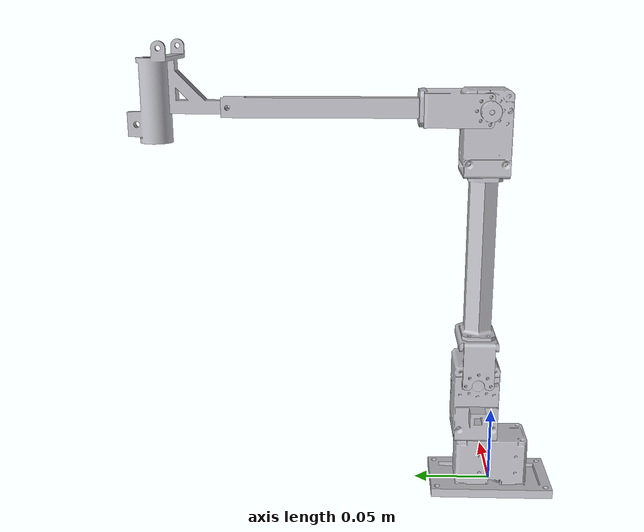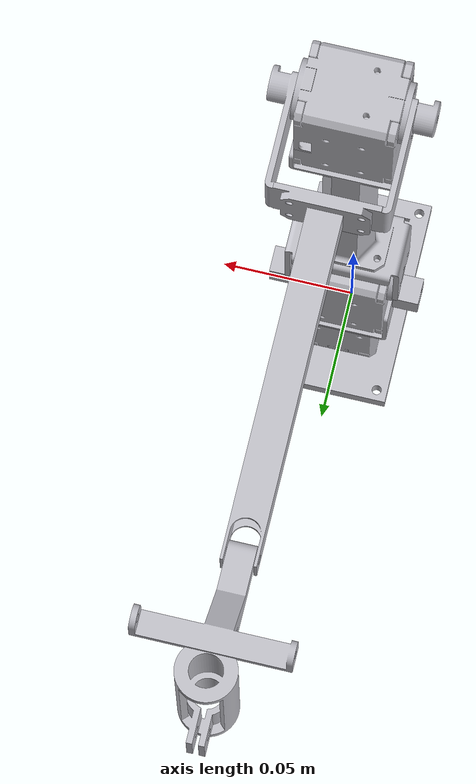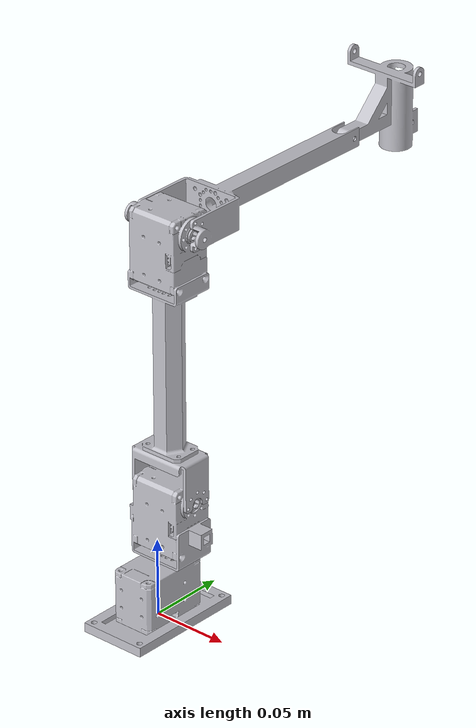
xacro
<?xml version="1.0" ?>
<robot name="pr_robot" xmlns:xacro="http://www.ros.org/wiki/xacro">

<xacro:include filename="$(find pr_robot_description)/urdf/materials.xacro" />
<xacro:include filename="$(find pr_robot_description)/urdf/pr_robot.trans" />
<xacro:include filename="$(find pr_robot_description)/urdf/pr_robot.gazebo" />
<link name="base_link">
  <inertial>
    <origin xyz="-4.853296224115538e-06 0.00024714628831860636 0.013633958120257385" rpy="0 0 0"/>
    <mass value="0.43776064834744016"/>
    <inertia ixx="0.000186" iyy="0.000102" izz="0.000172" ixy="0.0" iyz="-1e-06" ixz="0.0"/>
  </inertial>
  <visual>
    <origin xyz="0 0 0" rpy="0 0 0"/>
    <geometry>
      <mesh filename="package://pr_robot_description/meshes/base_link.stl" scale="0.001 0.001 0.001"/>
    </geometry>
    <material name="silver"/>
  </visual>
  <collision>
    <origin xyz="0 0 0" rpy="0 0 0"/>
    <geometry>
      <mesh filename="package://pr_robot_description/meshes/base_link.stl" scale="0.001 0.001 0.001"/>
    </geometry>
  </collision>
</link>

<link name="yaw_link_1">
  <inertial>
    <origin xyz="-0.0004754643906596662 5.614646444242893e-06 0.02718028816828332" rpy="0 0 0"/>
    <mass value="0.3784235681235821"/>
    <inertia ixx="9.9e-05" iyy="0.00012" izz="7e-05" ixy="0.0" iyz="-0.0" ixz="1e-06"/>
  </inertial>
  <visual>
    <origin xyz="-0.0 -0.012 -0.036" rpy="0 0 0"/>
    <geometry>
      <mesh filename="package://pr_robot_description/meshes/yaw_link_1.stl" scale="0.001 0.001 0.001"/>
    </geometry>
    <material name="silver"/>
  </visual>
  <collision>
    <origin xyz="-0.0 -0.012 -0.036" rpy="0 0 0"/>
    <geometry>
      <mesh filename="package://pr_robot_description/meshes/yaw_link_1.stl" scale="0.001 0.001 0.001"/>
    </geometry>
  </collision>
</link>

<link name="bicep_link_1">
  <inertial>
    <origin xyz="0.018637728191771286 0.0001372287027197952 0.13472163547698685" rpy="0 0 0"/>
    <mass value="0.4966627818994611"/>
    <inertia ixx="0.001227" iyy="0.001249" izz="7.9e-05" ixy="0.0" iyz="-1e-06" ixz="5e-06"/>
  </inertial>
  <visual>
    <origin xyz="0.019 -0.012 -0.0765" rpy="0 0 0"/>
    <geometry>
      <mesh filename="package://pr_robot_description/meshes/bicep_link_1.stl" scale="0.001 0.001 0.001"/>
    </geometry>
    <material name="silver"/>
  </visual>
  <collision>
    <origin xyz="0.019 -0.012 -0.0765" rpy="0 0 0"/>
    <geometry>
      <mesh filename="package://pr_robot_description/meshes/bicep_link_1.stl" scale="0.001 0.001 0.001"/>
    </geometry>
  </collision>
</link>

<link name="forearm_link_1">
  <inertial>
    <origin xyz="0.01900242048379081 0.056775815995802226 -1.168568362480693e-05" rpy="0 0 0"/>
    <mass value="0.0897194077269878"/>
    <inertia ixx="0.000174" iyy="1.9e-05" izz="0.000188" ixy="0.0" iyz="0.0" ixz="-0.0"/>
  </inertial>
  <visual>
    <origin xyz="0.019 -0.012172 -0.2505" rpy="0 0 0"/>
    <geometry>
      <mesh filename="package://pr_robot_description/meshes/forearm_link_1.stl" scale="0.001 0.001 0.001"/>
    </geometry>
    <material name="silver"/>
  </visual>
  <collision>
    <origin xyz="0.019 -0.012172 -0.2505" rpy="0 0 0"/>
    <geometry>
      <mesh filename="package://pr_robot_description/meshes/forearm_link_1.stl" scale="0.001 0.001 0.001"/>
    </geometry>
  </collision>
</link>

<link name="pen_link_1">
  <inertial>
    <origin xyz="0.005000016897849962 0.03546186210657498 0.005144989924291743" rpy="0 0 0"/>
    <mass value="0.10871652568199004"/>
    <inertia ixx="4.4e-05" iyy="3e-05" izz="2.5e-05" ixy="-0.0" iyz="2e-06" ixz="0.0"/>
  </inertial>
  <visual>
    <origin xyz="0.005 -0.169172 -0.250467" rpy="0 0 0"/>
    <geometry>
      <mesh filename="package://pr_robot_description/meshes/pen_link_1.stl" scale="0.001 0.001 0.001"/>
    </geometry>
    <material name="silver"/>
  </visual>
  <collision>
    <origin xyz="0.005 -0.169172 -0.250467" rpy="0 0 0"/>
    <geometry>
      <mesh filename="package://pr_robot_description/meshes/pen_link_1.stl" scale="0.001 0.001 0.001"/>
    </geometry>
  </collision>
</link>

<joint name="yaw_joint" type="revolute">
  <origin xyz="0.0 0.012 0.036" rpy="0 0 0"/>
  <parent link="base_link"/>
  <child link="yaw_link_1"/>
  <axis xyz="0.0 0.0 1.0"/>
  <limit upper="1.570796" lower="-1.570796" effort="100" velocity="100"/>
</joint>

<joint name="bicep_joint" type="revolute">
  <origin xyz="-0.019 0.0 0.0405" rpy="0 0 0"/>
  <parent link="yaw_link_1"/>
  <child link="bicep_link_1"/>
  <axis xyz="-1.0 0.0 0.0"/>
  <limit upper="1.570796" lower="0.0" effort="100" velocity="100"/>
</joint>

<joint name="forearm_joint" type="revolute">
  <origin xyz="0.0 0.000172 0.174" rpy="0 0 0"/>
  <parent link="bicep_link_1"/>
  <child link="forearm_link_1"/>
  <axis xyz="-1.0 0.0 0.0"/>
  <limit upper="0.785398" lower="-1.570796" effort="100" velocity="100"/>
</joint>

<joint name="pen_joint" type="revolute">
  <origin xyz="0.014 0.157 -3.3e-05" rpy="0 0 0"/>
  <parent link="forearm_link_1"/>
  <child link="pen_link_1"/>
  <axis xyz="-1.0 0.0 0.0"/>
  <limit upper="2.268928" lower="-1.832596" effort="100" velocity="100"/>
</joint>

</robot>

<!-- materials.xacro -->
<robot name="pr_robot" xmlns:xacro="http://www.ros.org/wiki/xacro" >

<material name="pr_robot_silver">
  <color rgba="0.700 0.700 0.700 1.000"/>
</material>

<material name="pr_robot_color0">
  <color rgba="1.0 0.761 0.055 1.0"/>
</material>

<material name="pr_robot_color1">
  <color rgba="0.357 0.357 0.357 1.0"/>
</material>

<material name="pr_robot_color2">
  <color rgba="0.965 0.965 0.953 1.0"/>
</material>

</robot>

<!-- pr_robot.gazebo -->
<robot name="pr_robot" xmlns:xacro="http://www.ros.org/wiki/xacro" >

<xacro:property name="body_color" value="Gazebo/Silver" />

<gazebo>
  <plugin name="control" filename="libgazebo_ros_control.so"/>
</gazebo>
<gazebo reference="base_link">
  <material>${body_color}</material>
  <mu1>0.2</mu1>
  <mu2>0.2</mu2>
  <self_collide>true</self_collide>
  <gravity>true</gravity>
</gazebo>

<gazebo reference="yaw_link">
  <material>${body_color}</material>
  <mu1>0.2</mu1>
  <mu2>0.2</mu2>
  <self_collide>true</self_collide>
</gazebo>

<gazebo reference="bicep_link">
  <material>${body_color}</material>
  <mu1>0.2</mu1>
  <mu2>0.2</mu2>
  <self_collide>true</self_collide>
</gazebo>

<gazebo reference="forearm_link">
  <material>${body_color}</material>
  <mu1>0.2</mu1>
  <mu2>0.2</mu2>
  <self_collide>true</self_collide>
</gazebo>

<gazebo reference="pen_mount_link">
  <material>${body_color}</material>
  <mu1>0.2</mu1>
  <mu2>0.2</mu2>
  <self_collide>true</self_collide>
</gazebo>

<gazebo reference="pen_link">
  <material>${body_color}</material>
  <mu1>0.2</mu1>
  <mu2>0.2</mu2>
  <self_collide>true</self_collide>
</gazebo>

<gazebo reference="pen_tip_link">
  <material>${body_color}</material>
  <mu1>0.2</mu1>
  <mu2>0.2</mu2>
  <self_collide>true</self_collide>
</gazebo>

</robot>
